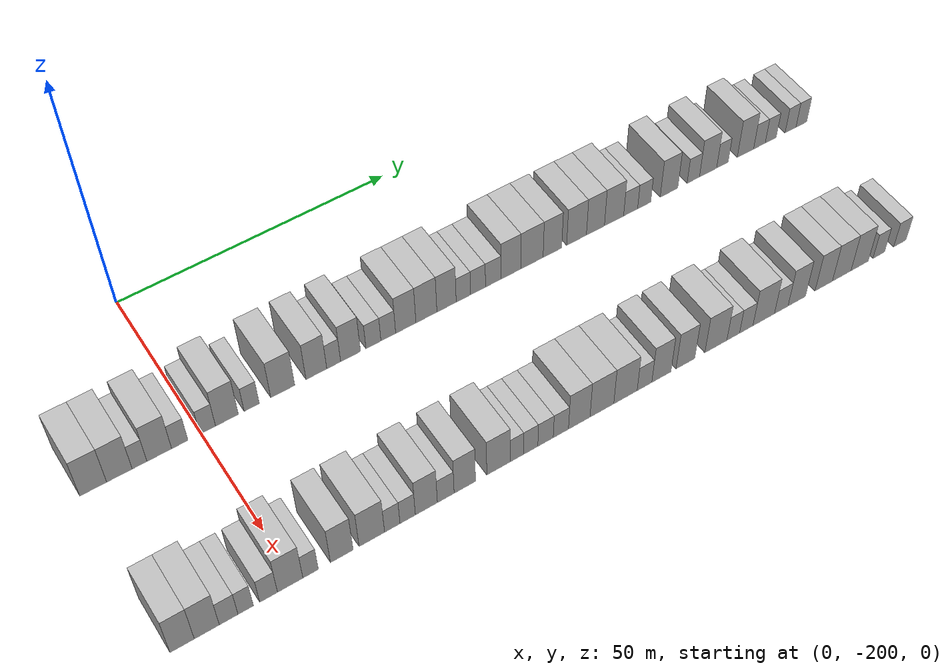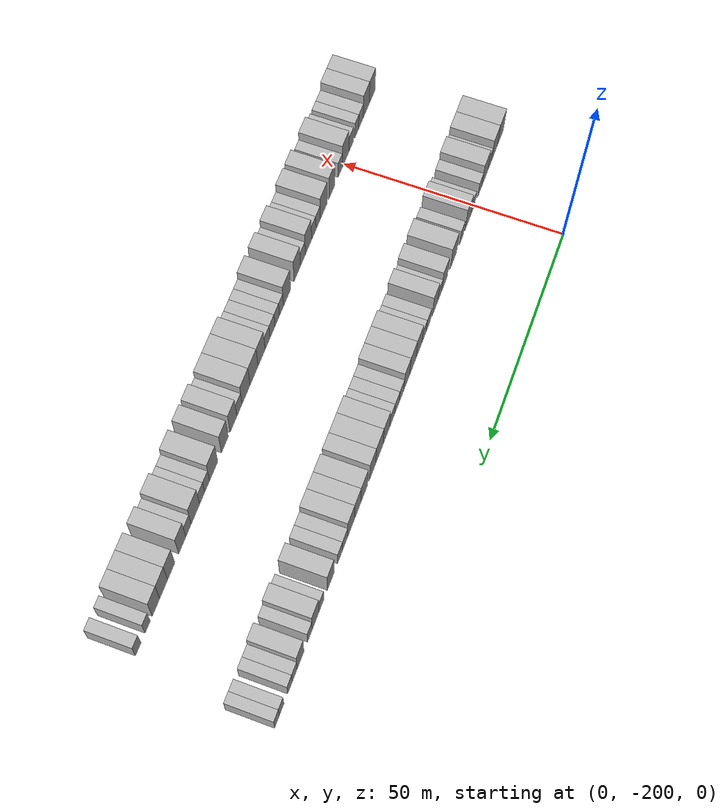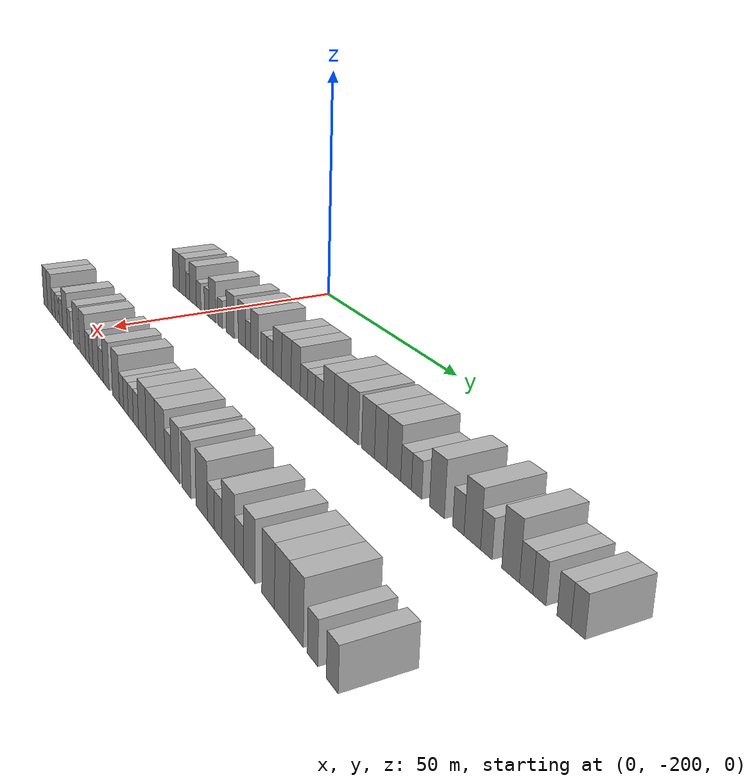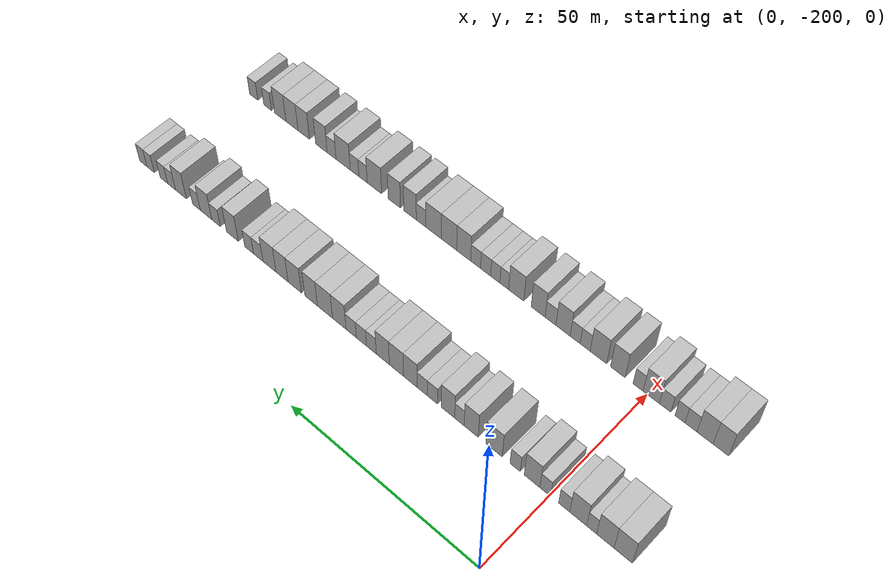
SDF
<sdf version="1.6">
 <world name="default">
  <model name="building_1">
   <static>1</static>
   <pose>25.0000 -217.8196 0 0.000000 0.000000 0.000000</pose>
   <link name="link">
    <pose>0 0 4.50 0 0 0</pose>
    <collision name="collision"><geometry><box><size>10.0000 4.3608 9.0000</size></box></geometry></collision>
    <visual name="visual">
     <cast_shadows>0</cast_shadows>
     <geometry><box><size>10.0000 4.3608 9.0000</size></box></geometry>
     <material>
      <script>
       <uri>model://HANNAS_wall/materials/scripts</uri>
       <uri>model://HANNAS_wall/materials/textures</uri>
       <name>vrc/HANNAS_wall</name>
      </script>
     </material>
    </visual>
   </link>
  </model>
  <model name="building_2">
   <static>1</static>
   <pose>25.0000 -213.5517 0 0.000000 0.000000 0.000000</pose>
   <link name="link">
    <pose>0 0 4.50 0 0 0</pose>
    <collision name="collision"><geometry><box><size>10.0000 4.1750 9.0000</size></box></geometry></collision>
    <visual name="visual">
     <cast_shadows>0</cast_shadows>
     <geometry><box><size>10.0000 4.1750 9.0000</size></box></geometry>
     <material>
      <script>
       <uri>model://HANNAS_wall/materials/scripts</uri>
       <uri>model://HANNAS_wall/materials/textures</uri>
       <name>vrc/HANNAS_wall</name>
      </script>
     </material>
    </visual>
   </link>
  </model>
  <model name="building_3">
   <static>1</static>
   <pose>25.0000 -210.2575 0 0.000000 0.000000 0.000000</pose>
   <link name="link">
    <pose>0 0 3.00 0 0 0</pose>
    <collision name="collision"><geometry><box><size>10.0000 2.4133 6.0000</size></box></geometry></collision>
    <visual name="visual">
     <cast_shadows>0</cast_shadows>
     <geometry><box><size>10.0000 2.4133 6.0000</size></box></geometry>
     <material>
      <script>
       <uri>model://HANNAS_wall/materials/scripts</uri>
       <uri>model://HANNAS_wall/materials/textures</uri>
       <name>vrc/HANNAS_wall</name>
      </script>
     </material>
    </visual>
   </link>
  </model>
  <model name="building_4">
   <static>1</static>
   <pose>25.0000 -206.9874 0 0.000000 0.000000 0.000000</pose>
   <link name="link">
    <pose>0 0 4.50 0 0 0</pose>
    <collision name="collision"><geometry><box><size>10.0000 4.1270 9.0000</size></box></geometry></collision>
    <visual name="visual">
     <cast_shadows>0</cast_shadows>
     <geometry><box><size>10.0000 4.1270 9.0000</size></box></geometry>
     <material>
      <script>
       <uri>model://HANNAS_wall/materials/scripts</uri>
       <uri>model://HANNAS_wall/materials/textures</uri>
       <name>vrc/HANNAS_wall</name>
      </script>
     </material>
    </visual>
   </link>
  </model>
  <model name="building_5">
   <static>1</static>
   <pose>25.0000 -203.5547 0 0.000000 0.000000 0.000000</pose>
   <link name="link">
    <pose>0 0 3.00 0 0 0</pose>
    <collision name="collision"><geometry><box><size>10.0000 2.7383 6.0000</size></box></geometry></collision>
    <visual name="visual">
     <cast_shadows>0</cast_shadows>
     <geometry><box><size>10.0000 2.7383 6.0000</size></box></geometry>
     <material>
      <script>
       <uri>model://HANNAS_wall/materials/scripts</uri>
       <uri>model://HANNAS_wall/materials/textures</uri>
       <name>vrc/HANNAS_wall</name>
      </script>
     </material>
    </visual>
   </link>
  </model>
  <model name="building_6">
   <static>1</static>
   <pose>25.0000 -198.8463 0 0.000000 0.000000 0.000000</pose>
   <link name="link">
    <pose>0 0 3.00 0 0 0</pose>
    <collision name="collision"><geometry><box><size>10.0000 2.6786 6.0000</size></box></geometry></collision>
    <visual name="visual">
     <cast_shadows>0</cast_shadows>
     <geometry><box><size>10.0000 2.6786 6.0000</size></box></geometry>
     <material>
      <script>
       <uri>model://HANNAS_wall/materials/scripts</uri>
       <uri>model://HANNAS_wall/materials/textures</uri>
       <name>vrc/HANNAS_wall</name>
      </script>
     </material>
    </visual>
   </link>
  </model>
  <model name="building_7">
   <static>1</static>
   <pose>25.0000 -195.5430 0 0.000000 0.000000 0.000000</pose>
   <link name="link">
    <pose>0 0 4.50 0 0 0</pose>
    <collision name="collision"><geometry><box><size>10.0000 3.9280 9.0000</size></box></geometry></collision>
    <visual name="visual">
     <cast_shadows>0</cast_shadows>
     <geometry><box><size>10.0000 3.9280 9.0000</size></box></geometry>
     <material>
      <script>
       <uri>model://HANNAS_wall/materials/scripts</uri>
       <uri>model://HANNAS_wall/materials/textures</uri>
       <name>vrc/HANNAS_wall</name>
      </script>
     </material>
    </visual>
   </link>
  </model>
  <model name="building_8">
   <static>1</static>
   <pose>25.0000 -191.2647 0 0.000000 0.000000 0.000000</pose>
   <link name="link">
    <pose>0 0 3.00 0 0 0</pose>
    <collision name="collision"><geometry><box><size>10.0000 2.6285 6.0000</size></box></geometry></collision>
    <visual name="visual">
     <cast_shadows>0</cast_shadows>
     <geometry><box><size>10.0000 2.6285 6.0000</size></box></geometry>
     <material>
      <script>
       <uri>model://HANNAS_wall/materials/scripts</uri>
       <uri>model://HANNAS_wall/materials/textures</uri>
       <name>vrc/HANNAS_wall</name>
      </script>
     </material>
    </visual>
   </link>
  </model>
  <model name="building_9">
   <static>1</static>
   <pose>25.0000 -185.8397 0 0.000000 0.000000 0.000000</pose>
   <link name="link">
    <pose>0 0 4.50 0 0 0</pose>
    <collision name="collision"><geometry><box><size>10.0000 4.2216 9.0000</size></box></geometry></collision>
    <visual name="visual">
     <cast_shadows>0</cast_shadows>
     <geometry><box><size>10.0000 4.2216 9.0000</size></box></geometry>
     <material>
      <script>
       <uri>model://HANNAS_wall/materials/scripts</uri>
       <uri>model://HANNAS_wall/materials/textures</uri>
       <name>vrc/HANNAS_wall</name>
      </script>
     </material>
    </visual>
   </link>
  </model>
  <model name="building_10">
   <static>1</static>
   <pose>25.0000 -179.8683 0 0.000000 0.000000 0.000000</pose>
   <link name="link">
    <pose>0 0 4.50 0 0 0</pose>
    <collision name="collision"><geometry><box><size>10.0000 3.7211 9.0000</size></box></geometry></collision>
    <visual name="visual">
     <cast_shadows>0</cast_shadows>
     <geometry><box><size>10.0000 3.7211 9.0000</size></box></geometry>
     <material>
      <script>
       <uri>model://HANNAS_wall/materials/scripts</uri>
       <uri>model://HANNAS_wall/materials/textures</uri>
       <name>vrc/HANNAS_wall</name>
      </script>
     </material>
    </visual>
   </link>
  </model>
  <model name="building_11">
   <static>1</static>
   <pose>25.0000 -176.7563 0 0.000000 0.000000 0.000000</pose>
   <link name="link">
    <pose>0 0 3.00 0 0 0</pose>
    <collision name="collision"><geometry><box><size>10.0000 2.5028 6.0000</size></box></geometry></collision>
    <visual name="visual">
     <cast_shadows>0</cast_shadows>
     <geometry><box><size>10.0000 2.5028 6.0000</size></box></geometry>
     <material>
      <script>
       <uri>model://HANNAS_wall/materials/scripts</uri>
       <uri>model://HANNAS_wall/materials/textures</uri>
       <name>vrc/HANNAS_wall</name>
      </script>
     </material>
    </visual>
   </link>
  </model>
  <model name="building_12">
   <static>1</static>
   <pose>25.0000 -173.7009 0 0.000000 0.000000 0.000000</pose>
   <link name="link">
    <pose>0 0 4.50 0 0 0</pose>
    <collision name="collision"><geometry><box><size>10.0000 3.6080 9.0000</size></box></geometry></collision>
    <visual name="visual">
     <cast_shadows>0</cast_shadows>
     <geometry><box><size>10.0000 3.6080 9.0000</size></box></geometry>
     <material>
      <script>
       <uri>model://HANNAS_wall/materials/scripts</uri>
       <uri>model://HANNAS_wall/materials/textures</uri>
       <name>vrc/HANNAS_wall</name>
      </script>
     </material>
    </visual>
   </link>
  </model>
  <model name="building_13">
   <static>1</static>
   <pose>25.0000 -169.5221 0 0.000000 0.000000 0.000000</pose>
   <link name="link">
    <pose>0 0 3.00 0 0 0</pose>
    <collision name="collision"><geometry><box><size>10.0000 2.7497 6.0000</size></box></geometry></collision>
    <visual name="visual">
     <cast_shadows>0</cast_shadows>
     <geometry><box><size>10.0000 2.7497 6.0000</size></box></geometry>
     <material>
      <script>
       <uri>model://HANNAS_wall/materials/scripts</uri>
       <uri>model://HANNAS_wall/materials/textures</uri>
       <name>vrc/HANNAS_wall</name>
      </script>
     </material>
    </visual>
   </link>
  </model>
  <model name="building_14">
   <static>1</static>
   <pose>25.0000 -166.7844 0 0.000000 0.000000 0.000000</pose>
   <link name="link">
    <pose>0 0 3.00 0 0 0</pose>
    <collision name="collision"><geometry><box><size>10.0000 2.7257 6.0000</size></box></geometry></collision>
    <visual name="visual">
     <cast_shadows>0</cast_shadows>
     <geometry><box><size>10.0000 2.7257 6.0000</size></box></geometry>
     <material>
      <script>
       <uri>model://HANNAS_wall/materials/scripts</uri>
       <uri>model://HANNAS_wall/materials/textures</uri>
       <name>vrc/HANNAS_wall</name>
      </script>
     </material>
    </visual>
   </link>
  </model>
  <model name="building_15">
   <static>1</static>
   <pose>25.0000 -163.5337 0 0.000000 0.000000 0.000000</pose>
   <link name="link">
    <pose>0 0 4.50 0 0 0</pose>
    <collision name="collision"><geometry><box><size>10.0000 3.7757 9.0000</size></box></geometry></collision>
    <visual name="visual">
     <cast_shadows>0</cast_shadows>
     <geometry><box><size>10.0000 3.7757 9.0000</size></box></geometry>
     <material>
      <script>
       <uri>model://HANNAS_wall/materials/scripts</uri>
       <uri>model://HANNAS_wall/materials/textures</uri>
       <name>vrc/HANNAS_wall</name>
      </script>
     </material>
    </visual>
   </link>
  </model>
  <model name="building_16">
   <static>1</static>
   <pose>25.0000 -159.6657 0 0.000000 0.000000 0.000000</pose>
   <link name="link">
    <pose>0 0 4.50 0 0 0</pose>
    <collision name="collision"><geometry><box><size>10.0000 3.9602 9.0000</size></box></geometry></collision>
    <visual name="visual">
     <cast_shadows>0</cast_shadows>
     <geometry><box><size>10.0000 3.9602 9.0000</size></box></geometry>
     <material>
      <script>
       <uri>model://HANNAS_wall/materials/scripts</uri>
       <uri>model://HANNAS_wall/materials/textures</uri>
       <name>vrc/HANNAS_wall</name>
      </script>
     </material>
    </visual>
   </link>
  </model>
  <model name="building_17">
   <static>1</static>
   <pose>25.0000 -155.8524 0 0.000000 0.000000 0.000000</pose>
   <link name="link">
    <pose>0 0 4.50 0 0 0</pose>
    <collision name="collision"><geometry><box><size>10.0000 3.6663 9.0000</size></box></geometry></collision>
    <visual name="visual">
     <cast_shadows>0</cast_shadows>
     <geometry><box><size>10.0000 3.6663 9.0000</size></box></geometry>
     <material>
      <script>
       <uri>model://HANNAS_wall/materials/scripts</uri>
       <uri>model://HANNAS_wall/materials/textures</uri>
       <name>vrc/HANNAS_wall</name>
      </script>
     </material>
    </visual>
   </link>
  </model>
  <model name="building_18">
   <static>1</static>
   <pose>25.0000 -152.6347 0 0.000000 0.000000 0.000000</pose>
   <link name="link">
    <pose>0 0 3.00 0 0 0</pose>
    <collision name="collision"><geometry><box><size>10.0000 2.7692 6.0000</size></box></geometry></collision>
    <visual name="visual">
     <cast_shadows>0</cast_shadows>
     <geometry><box><size>10.0000 2.7692 6.0000</size></box></geometry>
     <material>
      <script>
       <uri>model://HANNAS_wall/materials/scripts</uri>
       <uri>model://HANNAS_wall/materials/textures</uri>
       <name>vrc/HANNAS_wall</name>
      </script>
     </material>
    </visual>
   </link>
  </model>
  <model name="building_19">
   <static>1</static>
   <pose>25.0000 -149.8208 0 0.000000 0.000000 0.000000</pose>
   <link name="link">
    <pose>0 0 3.00 0 0 0</pose>
    <collision name="collision"><geometry><box><size>10.0000 2.8584 6.0000</size></box></geometry></collision>
    <visual name="visual">
     <cast_shadows>0</cast_shadows>
     <geometry><box><size>10.0000 2.8584 6.0000</size></box></geometry>
     <material>
      <script>
       <uri>model://HANNAS_wall/materials/scripts</uri>
       <uri>model://HANNAS_wall/materials/textures</uri>
       <name>vrc/HANNAS_wall</name>
      </script>
     </material>
    </visual>
   </link>
  </model>
  <model name="building_20">
   <static>1</static>
   <pose>25.0000 -146.8978 0 0.000000 0.000000 0.000000</pose>
   <link name="link">
    <pose>0 0 3.00 0 0 0</pose>
    <collision name="collision"><geometry><box><size>10.0000 2.9875 6.0000</size></box></geometry></collision>
    <visual name="visual">
     <cast_shadows>0</cast_shadows>
     <geometry><box><size>10.0000 2.9875 6.0000</size></box></geometry>
     <material>
      <script>
       <uri>model://HANNAS_wall/materials/scripts</uri>
       <uri>model://HANNAS_wall/materials/textures</uri>
       <name>vrc/HANNAS_wall</name>
      </script>
     </material>
    </visual>
   </link>
  </model>
  <model name="building_21">
   <static>1</static>
   <pose>25.0000 -143.4549 0 0.000000 0.000000 0.000000</pose>
   <link name="link">
    <pose>0 0 4.50 0 0 0</pose>
    <collision name="collision"><geometry><box><size>10.0000 3.8983 9.0000</size></box></geometry></collision>
    <visual name="visual">
     <cast_shadows>0</cast_shadows>
     <geometry><box><size>10.0000 3.8983 9.0000</size></box></geometry>
     <material>
      <script>
       <uri>model://HANNAS_wall/materials/scripts</uri>
       <uri>model://HANNAS_wall/materials/textures</uri>
       <name>vrc/HANNAS_wall</name>
      </script>
     </material>
    </visual>
   </link>
  </model>
  <model name="building_22">
   <static>1</static>
   <pose>25.0000 -139.2806 0 0.000000 0.000000 0.000000</pose>
   <link name="link">
    <pose>0 0 4.50 0 0 0</pose>
    <collision name="collision"><geometry><box><size>10.0000 4.4503 9.0000</size></box></geometry></collision>
    <visual name="visual">
     <cast_shadows>0</cast_shadows>
     <geometry><box><size>10.0000 4.4503 9.0000</size></box></geometry>
     <material>
      <script>
       <uri>model://HANNAS_wall/materials/scripts</uri>
       <uri>model://HANNAS_wall/materials/textures</uri>
       <name>vrc/HANNAS_wall</name>
      </script>
     </material>
    </visual>
   </link>
  </model>
  <model name="building_23">
   <static>1</static>
   <pose>25.0000 -135.1921 0 0.000000 0.000000 0.000000</pose>
   <link name="link">
    <pose>0 0 4.50 0 0 0</pose>
    <collision name="collision"><geometry><box><size>10.0000 3.7267 9.0000</size></box></geometry></collision>
    <visual name="visual">
     <cast_shadows>0</cast_shadows>
     <geometry><box><size>10.0000 3.7267 9.0000</size></box></geometry>
     <material>
      <script>
       <uri>model://HANNAS_wall/materials/scripts</uri>
       <uri>model://HANNAS_wall/materials/textures</uri>
       <name>vrc/HANNAS_wall</name>
      </script>
     </material>
    </visual>
   </link>
  </model>
  <model name="building_24">
   <static>1</static>
   <pose>25.0000 -130.3292 0 0.000000 0.000000 0.000000</pose>
   <link name="link">
    <pose>0 0 4.50 0 0 0</pose>
    <collision name="collision"><geometry><box><size>10.0000 3.9993 9.0000</size></box></geometry></collision>
    <visual name="visual">
     <cast_shadows>0</cast_shadows>
     <geometry><box><size>10.0000 3.9993 9.0000</size></box></geometry>
     <material>
      <script>
       <uri>model://HANNAS_wall/materials/scripts</uri>
       <uri>model://HANNAS_wall/materials/textures</uri>
       <name>vrc/HANNAS_wall</name>
      </script>
     </material>
    </visual>
   </link>
  </model>
  <model name="building_25">
   <static>1</static>
   <pose>25.0000 -126.4850 0 0.000000 0.000000 0.000000</pose>
   <link name="link">
    <pose>0 0 4.50 0 0 0</pose>
    <collision name="collision"><geometry><box><size>10.0000 3.6889 9.0000</size></box></geometry></collision>
    <visual name="visual">
     <cast_shadows>0</cast_shadows>
     <geometry><box><size>10.0000 3.6889 9.0000</size></box></geometry>
     <material>
      <script>
       <uri>model://HANNAS_wall/materials/scripts</uri>
       <uri>model://HANNAS_wall/materials/textures</uri>
       <name>vrc/HANNAS_wall</name>
      </script>
     </material>
    </visual>
   </link>
  </model>
  <model name="building_26">
   <static>1</static>
   <pose>25.0000 -122.6593 0 0.000000 0.000000 0.000000</pose>
   <link name="link">
    <pose>0 0 4.50 0 0 0</pose>
    <collision name="collision"><geometry><box><size>10.0000 3.9626 9.0000</size></box></geometry></collision>
    <visual name="visual">
     <cast_shadows>0</cast_shadows>
     <geometry><box><size>10.0000 3.9626 9.0000</size></box></geometry>
     <material>
      <script>
       <uri>model://HANNAS_wall/materials/scripts</uri>
       <uri>model://HANNAS_wall/materials/textures</uri>
       <name>vrc/HANNAS_wall</name>
      </script>
     </material>
    </visual>
   </link>
  </model>
  <model name="building_27">
   <static>1</static>
   <pose>25.0000 -119.2190 0 0.000000 0.000000 0.000000</pose>
   <link name="link">
    <pose>0 0 3.00 0 0 0</pose>
    <collision name="collision"><geometry><box><size>10.0000 2.9181 6.0000</size></box></geometry></collision>
    <visual name="visual">
     <cast_shadows>0</cast_shadows>
     <geometry><box><size>10.0000 2.9181 6.0000</size></box></geometry>
     <material>
      <script>
       <uri>model://HANNAS_wall/materials/scripts</uri>
       <uri>model://HANNAS_wall/materials/textures</uri>
       <name>vrc/HANNAS_wall</name>
      </script>
     </material>
    </visual>
   </link>
  </model>
  <model name="building_28">
   <static>1</static>
   <pose>25.0000 -116.3828 0 0.000000 0.000000 0.000000</pose>
   <link name="link">
    <pose>0 0 3.00 0 0 0</pose>
    <collision name="collision"><geometry><box><size>10.0000 2.7541 6.0000</size></box></geometry></collision>
    <visual name="visual">
     <cast_shadows>0</cast_shadows>
     <geometry><box><size>10.0000 2.7541 6.0000</size></box></geometry>
     <material>
      <script>
       <uri>model://HANNAS_wall/materials/scripts</uri>
       <uri>model://HANNAS_wall/materials/textures</uri>
       <name>vrc/HANNAS_wall</name>
      </script>
     </material>
    </visual>
   </link>
  </model>
  <model name="building_29">
   <static>1</static>
   <pose>25.0000 -111.1421 0 0.000000 0.000000 0.000000</pose>
   <link name="link">
    <pose>0 0 4.50 0 0 0</pose>
    <collision name="collision"><geometry><box><size>10.0000 3.7273 9.0000</size></box></geometry></collision>
    <visual name="visual">
     <cast_shadows>0</cast_shadows>
     <geometry><box><size>10.0000 3.7273 9.0000</size></box></geometry>
     <material>
      <script>
       <uri>model://HANNAS_wall/materials/scripts</uri>
       <uri>model://HANNAS_wall/materials/textures</uri>
       <name>vrc/HANNAS_wall</name>
      </script>
     </material>
    </visual>
   </link>
  </model>
  <model name="building_30">
   <static>1</static>
   <pose>25.0000 -105.9499 0 0.000000 0.000000 0.000000</pose>
   <link name="link">
    <pose>0 0 3.00 0 0 0</pose>
    <collision name="collision"><geometry><box><size>10.0000 2.6573 6.0000</size></box></geometry></collision>
    <visual name="visual">
     <cast_shadows>0</cast_shadows>
     <geometry><box><size>10.0000 2.6573 6.0000</size></box></geometry>
     <material>
      <script>
       <uri>model://HANNAS_wall/materials/scripts</uri>
       <uri>model://HANNAS_wall/materials/textures</uri>
       <name>vrc/HANNAS_wall</name>
      </script>
     </material>
    </visual>
   </link>
  </model>
  <model name="building_31">
   <static>1</static>
   <pose>25.0000 -102.7578 0 0.000000 0.000000 0.000000</pose>
   <link name="link">
    <pose>0 0 4.50 0 0 0</pose>
    <collision name="collision"><geometry><box><size>10.0000 3.7269 9.0000</size></box></geometry></collision>
    <visual name="visual">
     <cast_shadows>0</cast_shadows>
     <geometry><box><size>10.0000 3.7269 9.0000</size></box></geometry>
     <material>
      <script>
       <uri>model://HANNAS_wall/materials/scripts</uri>
       <uri>model://HANNAS_wall/materials/textures</uri>
       <name>vrc/HANNAS_wall</name>
      </script>
     </material>
    </visual>
   </link>
  </model>
  <model name="building_32">
   <static>1</static>
   <pose>25.0000 -99.6385 0 0.000000 0.000000 0.000000</pose>
   <link name="link">
    <pose>0 0 3.00 0 0 0</pose>
    <collision name="collision"><geometry><box><size>10.0000 2.5117 6.0000</size></box></geometry></collision>
    <visual name="visual">
     <cast_shadows>0</cast_shadows>
     <geometry><box><size>10.0000 2.5117 6.0000</size></box></geometry>
     <material>
      <script>
       <uri>model://HANNAS_wall/materials/scripts</uri>
       <uri>model://HANNAS_wall/materials/textures</uri>
       <name>vrc/HANNAS_wall</name>
      </script>
     </material>
    </visual>
   </link>
  </model>
  <model name="building_33">
   <static>1</static>
   <pose>25.0000 -94.5818 0 0.000000 0.000000 0.000000</pose>
   <link name="link">
    <pose>0 0 4.50 0 0 0</pose>
    <collision name="collision"><geometry><box><size>10.0000 3.6016 9.0000</size></box></geometry></collision>
    <visual name="visual">
     <cast_shadows>0</cast_shadows>
     <geometry><box><size>10.0000 3.6016 9.0000</size></box></geometry>
     <material>
      <script>
       <uri>model://HANNAS_wall/materials/scripts</uri>
       <uri>model://HANNAS_wall/materials/textures</uri>
       <name>vrc/HANNAS_wall</name>
      </script>
     </material>
    </visual>
   </link>
  </model>
  <model name="building_34">
   <static>1</static>
   <pose>25.0000 -91.4817 0 0.000000 0.000000 0.000000</pose>
   <link name="link">
    <pose>0 0 3.00 0 0 0</pose>
    <collision name="collision"><geometry><box><size>10.0000 2.5986 6.0000</size></box></geometry></collision>
    <visual name="visual">
     <cast_shadows>0</cast_shadows>
     <geometry><box><size>10.0000 2.5986 6.0000</size></box></geometry>
     <material>
      <script>
       <uri>model://HANNAS_wall/materials/scripts</uri>
       <uri>model://HANNAS_wall/materials/textures</uri>
       <name>vrc/HANNAS_wall</name>
      </script>
     </material>
    </visual>
   </link>
  </model>
  <model name="building_35">
   <static>1</static>
   <pose>25.0000 -88.9547 0 0.000000 0.000000 0.000000</pose>
   <link name="link">
    <pose>0 0 3.00 0 0 0</pose>
    <collision name="collision"><geometry><box><size>10.0000 2.4553 6.0000</size></box></geometry></collision>
    <visual name="visual">
     <cast_shadows>0</cast_shadows>
     <geometry><box><size>10.0000 2.4553 6.0000</size></box></geometry>
     <material>
      <script>
       <uri>model://HANNAS_wall/materials/scripts</uri>
       <uri>model://HANNAS_wall/materials/textures</uri>
       <name>vrc/HANNAS_wall</name>
      </script>
     </material>
    </visual>
   </link>
  </model>
  <model name="building_36">
   <static>1</static>
   <pose>25.0000 -84.4982 0 0.000000 0.000000 0.000000</pose>
   <link name="link">
    <pose>0 0 3.00 0 0 0</pose>
    <collision name="collision"><geometry><box><size>10.0000 2.4577 6.0000</size></box></geometry></collision>
    <visual name="visual">
     <cast_shadows>0</cast_shadows>
     <geometry><box><size>10.0000 2.4577 6.0000</size></box></geometry>
     <material>
      <script>
       <uri>model://HANNAS_wall/materials/scripts</uri>
       <uri>model://HANNAS_wall/materials/textures</uri>
       <name>vrc/HANNAS_wall</name>
      </script>
     </material>
    </visual>
   </link>
  </model>
  <model name="building_37">
   <static>1</static>
   <pose>25.0000 -82.0529 0 0.000000 0.000000 0.000000</pose>
   <link name="link">
    <pose>0 0 3.00 0 0 0</pose>
    <collision name="collision"><geometry><box><size>10.0000 2.4330 6.0000</size></box></geometry></collision>
    <visual name="visual">
     <cast_shadows>0</cast_shadows>
     <geometry><box><size>10.0000 2.4330 6.0000</size></box></geometry>
     <material>
      <script>
       <uri>model://HANNAS_wall/materials/scripts</uri>
       <uri>model://HANNAS_wall/materials/textures</uri>
       <name>vrc/HANNAS_wall</name>
      </script>
     </material>
    </visual>
   </link>
  </model>
  <model name="building_114">
   <static>1</static>
   <pose>55.0000 -218.1189 0 0.000000 0.000000 0.000000</pose>
   <link name="link">
    <pose>0 0 4.50 0 0 0</pose>
    <collision name="collision"><geometry><box><size>10.0000 3.7623 9.0000</size></box></geometry></collision>
    <visual name="visual">
     <cast_shadows>0</cast_shadows>
     <geometry><box><size>10.0000 3.7623 9.0000</size></box></geometry>
     <material>
      <script>
       <uri>model://HANNAS_wall/materials/scripts</uri>
       <uri>model://HANNAS_wall/materials/textures</uri>
       <name>vrc/HANNAS_wall</name>
      </script>
     </material>
    </visual>
   </link>
  </model>
  <model name="building_115">
   <static>1</static>
   <pose>55.0000 -214.2817 0 0.000000 0.000000 0.000000</pose>
   <link name="link">
    <pose>0 0 4.50 0 0 0</pose>
    <collision name="collision"><geometry><box><size>10.0000 3.9121 9.0000</size></box></geometry></collision>
    <visual name="visual">
     <cast_shadows>0</cast_shadows>
     <geometry><box><size>10.0000 3.9121 9.0000</size></box></geometry>
     <material>
      <script>
       <uri>model://HANNAS_wall/materials/scripts</uri>
       <uri>model://HANNAS_wall/materials/textures</uri>
       <name>vrc/HANNAS_wall</name>
      </script>
     </material>
    </visual>
   </link>
  </model>
  <model name="building_116">
   <static>1</static>
   <pose>55.0000 -210.8537 0 0.000000 0.000000 0.000000</pose>
   <link name="link">
    <pose>0 0 3.00 0 0 0</pose>
    <collision name="collision"><geometry><box><size>10.0000 2.9439 6.0000</size></box></geometry></collision>
    <visual name="visual">
     <cast_shadows>0</cast_shadows>
     <geometry><box><size>10.0000 2.9439 6.0000</size></box></geometry>
     <material>
      <script>
       <uri>model://HANNAS_wall/materials/scripts</uri>
       <uri>model://HANNAS_wall/materials/textures</uri>
       <name>vrc/HANNAS_wall</name>
      </script>
     </material>
    </visual>
   </link>
  </model>
  <model name="building_117">
   <static>1</static>
   <pose>55.0000 -208.1535 0 0.000000 0.000000 0.000000</pose>
   <link name="link">
    <pose>0 0 3.00 0 0 0</pose>
    <collision name="collision"><geometry><box><size>10.0000 2.4567 6.0000</size></box></geometry></collision>
    <visual name="visual">
     <cast_shadows>0</cast_shadows>
     <geometry><box><size>10.0000 2.4567 6.0000</size></box></geometry>
     <material>
      <script>
       <uri>model://HANNAS_wall/materials/scripts</uri>
       <uri>model://HANNAS_wall/materials/textures</uri>
       <name>vrc/HANNAS_wall</name>
      </script>
     </material>
    </visual>
   </link>
  </model>
  <model name="building_118">
   <static>1</static>
   <pose>55.0000 -204.4945 0 0.000000 0.000000 0.000000</pose>
   <link name="link">
    <pose>0 0 3.00 0 0 0</pose>
    <collision name="collision"><geometry><box><size>10.0000 2.8613 6.0000</size></box></geometry></collision>
    <visual name="visual">
     <cast_shadows>0</cast_shadows>
     <geometry><box><size>10.0000 2.8613 6.0000</size></box></geometry>
     <material>
      <script>
       <uri>model://HANNAS_wall/materials/scripts</uri>
       <uri>model://HANNAS_wall/materials/textures</uri>
       <name>vrc/HANNAS_wall</name>
      </script>
     </material>
    </visual>
   </link>
  </model>
  <model name="building_119">
   <static>1</static>
   <pose>55.0000 -200.9998 0 0.000000 0.000000 0.000000</pose>
   <link name="link">
    <pose>0 0 4.50 0 0 0</pose>
    <collision name="collision"><geometry><box><size>10.0000 4.1281 9.0000</size></box></geometry></collision>
    <visual name="visual">
     <cast_shadows>0</cast_shadows>
     <geometry><box><size>10.0000 4.1281 9.0000</size></box></geometry>
     <material>
      <script>
       <uri>model://HANNAS_wall/materials/scripts</uri>
       <uri>model://HANNAS_wall/materials/textures</uri>
       <name>vrc/HANNAS_wall</name>
      </script>
     </material>
    </visual>
   </link>
  </model>
  <model name="building_120">
   <static>1</static>
   <pose>55.0000 -197.6704 0 0.000000 0.000000 0.000000</pose>
   <link name="link">
    <pose>0 0 3.00 0 0 0</pose>
    <collision name="collision"><geometry><box><size>10.0000 2.5308 6.0000</size></box></geometry></collision>
    <visual name="visual">
     <cast_shadows>0</cast_shadows>
     <geometry><box><size>10.0000 2.5308 6.0000</size></box></geometry>
     <material>
      <script>
       <uri>model://HANNAS_wall/materials/scripts</uri>
       <uri>model://HANNAS_wall/materials/textures</uri>
       <name>vrc/HANNAS_wall</name>
      </script>
     </material>
    </visual>
   </link>
  </model>
  <model name="building_121">
   <static>1</static>
   <pose>55.0000 -192.5222 0 0.000000 0.000000 0.000000</pose>
   <link name="link">
    <pose>0 0 4.50 0 0 0</pose>
    <collision name="collision"><geometry><box><size>10.0000 3.7657 9.0000</size></box></geometry></collision>
    <visual name="visual">
     <cast_shadows>0</cast_shadows>
     <geometry><box><size>10.0000 3.7657 9.0000</size></box></geometry>
     <material>
      <script>
       <uri>model://HANNAS_wall/materials/scripts</uri>
       <uri>model://HANNAS_wall/materials/textures</uri>
       <name>vrc/HANNAS_wall</name>
      </script>
     </material>
    </visual>
   </link>
  </model>
  <model name="building_122">
   <static>1</static>
   <pose>55.0000 -187.4908 0 0.000000 0.000000 0.000000</pose>
   <link name="link">
    <pose>0 0 4.50 0 0 0</pose>
    <collision name="collision"><geometry><box><size>10.0000 4.2971 9.0000</size></box></geometry></collision>
    <visual name="visual">
     <cast_shadows>0</cast_shadows>
     <geometry><box><size>10.0000 4.2971 9.0000</size></box></geometry>
     <material>
      <script>
       <uri>model://HANNAS_wall/materials/scripts</uri>
       <uri>model://HANNAS_wall/materials/textures</uri>
       <name>vrc/HANNAS_wall</name>
      </script>
     </material>
    </visual>
   </link>
  </model>
  <model name="building_123">
   <static>1</static>
   <pose>55.0000 -184.0334 0 0.000000 0.000000 0.000000</pose>
   <link name="link">
    <pose>0 0 3.00 0 0 0</pose>
    <collision name="collision"><geometry><box><size>10.0000 2.6176 6.0000</size></box></geometry></collision>
    <visual name="visual">
     <cast_shadows>0</cast_shadows>
     <geometry><box><size>10.0000 2.6176 6.0000</size></box></geometry>
     <material>
      <script>
       <uri>model://HANNAS_wall/materials/scripts</uri>
       <uri>model://HANNAS_wall/materials/textures</uri>
       <name>vrc/HANNAS_wall</name>
      </script>
     </material>
    </visual>
   </link>
  </model>
  <model name="building_124">
   <static>1</static>
   <pose>55.0000 -181.4055 0 0.000000 0.000000 0.000000</pose>
   <link name="link">
    <pose>0 0 3.00 0 0 0</pose>
    <collision name="collision"><geometry><box><size>10.0000 2.6382 6.0000</size></box></geometry></collision>
    <visual name="visual">
     <cast_shadows>0</cast_shadows>
     <geometry><box><size>10.0000 2.6382 6.0000</size></box></geometry>
     <material>
      <script>
       <uri>model://HANNAS_wall/materials/scripts</uri>
       <uri>model://HANNAS_wall/materials/textures</uri>
       <name>vrc/HANNAS_wall</name>
      </script>
     </material>
    </visual>
   </link>
  </model>
  <model name="building_125">
   <static>1</static>
   <pose>55.0000 -178.1813 0 0.000000 0.000000 0.000000</pose>
   <link name="link">
    <pose>0 0 4.50 0 0 0</pose>
    <collision name="collision"><geometry><box><size>10.0000 3.8101 9.0000</size></box></geometry></collision>
    <visual name="visual">
     <cast_shadows>0</cast_shadows>
     <geometry><box><size>10.0000 3.8101 9.0000</size></box></geometry>
     <material>
      <script>
       <uri>model://HANNAS_wall/materials/scripts</uri>
       <uri>model://HANNAS_wall/materials/textures</uri>
       <name>vrc/HANNAS_wall</name>
      </script>
     </material>
    </visual>
   </link>
  </model>
  <model name="building_126">
   <static>1</static>
   <pose>55.0000 -174.8141 0 0.000000 0.000000 0.000000</pose>
   <link name="link">
    <pose>0 0 3.00 0 0 0</pose>
    <collision name="collision"><geometry><box><size>10.0000 2.9242 6.0000</size></box></geometry></collision>
    <visual name="visual">
     <cast_shadows>0</cast_shadows>
     <geometry><box><size>10.0000 2.9242 6.0000</size></box></geometry>
     <material>
      <script>
       <uri>model://HANNAS_wall/materials/scripts</uri>
       <uri>model://HANNAS_wall/materials/textures</uri>
       <name>vrc/HANNAS_wall</name>
      </script>
     </material>
    </visual>
   </link>
  </model>
  <model name="building_127">
   <static>1</static>
   <pose>55.0000 -171.4677 0 0.000000 0.000000 0.000000</pose>
   <link name="link">
    <pose>0 0 4.50 0 0 0</pose>
    <collision name="collision"><geometry><box><size>10.0000 3.7686 9.0000</size></box></geometry></collision>
    <visual name="visual">
     <cast_shadows>0</cast_shadows>
     <geometry><box><size>10.0000 3.7686 9.0000</size></box></geometry>
     <material>
      <script>
       <uri>model://HANNAS_wall/materials/scripts</uri>
       <uri>model://HANNAS_wall/materials/textures</uri>
       <name>vrc/HANNAS_wall</name>
      </script>
     </material>
    </visual>
   </link>
  </model>
  <model name="building_128">
   <static>1</static>
   <pose>55.0000 -165.4883 0 0.000000 0.000000 0.000000</pose>
   <link name="link">
    <pose>0 0 4.50 0 0 0</pose>
    <collision name="collision"><geometry><box><size>10.0000 4.1902 9.0000</size></box></geometry></collision>
    <visual name="visual">
     <cast_shadows>0</cast_shadows>
     <geometry><box><size>10.0000 4.1902 9.0000</size></box></geometry>
     <material>
      <script>
       <uri>model://HANNAS_wall/materials/scripts</uri>
       <uri>model://HANNAS_wall/materials/textures</uri>
       <name>vrc/HANNAS_wall</name>
      </script>
     </material>
    </visual>
   </link>
  </model>
  <model name="building_129">
   <static>1</static>
   <pose>55.0000 -162.1886 0 0.000000 0.000000 0.000000</pose>
   <link name="link">
    <pose>0 0 3.00 0 0 0</pose>
    <collision name="collision"><geometry><box><size>10.0000 2.4093 6.0000</size></box></geometry></collision>
    <visual name="visual">
     <cast_shadows>0</cast_shadows>
     <geometry><box><size>10.0000 2.4093 6.0000</size></box></geometry>
     <material>
      <script>
       <uri>model://HANNAS_wall/materials/scripts</uri>
       <uri>model://HANNAS_wall/materials/textures</uri>
       <name>vrc/HANNAS_wall</name>
      </script>
     </material>
    </visual>
   </link>
  </model>
  <model name="building_130">
   <static>1</static>
   <pose>55.0000 -159.6796 0 0.000000 0.000000 0.000000</pose>
   <link name="link">
    <pose>0 0 3.00 0 0 0</pose>
    <collision name="collision"><geometry><box><size>10.0000 2.6088 6.0000</size></box></geometry></collision>
    <visual name="visual">
     <cast_shadows>0</cast_shadows>
     <geometry><box><size>10.0000 2.6088 6.0000</size></box></geometry>
     <material>
      <script>
       <uri>model://HANNAS_wall/materials/scripts</uri>
       <uri>model://HANNAS_wall/materials/textures</uri>
       <name>vrc/HANNAS_wall</name>
      </script>
     </material>
    </visual>
   </link>
  </model>
  <model name="building_131">
   <static>1</static>
   <pose>55.0000 -156.9634 0 0.000000 0.000000 0.000000</pose>
   <link name="link">
    <pose>0 0 3.00 0 0 0</pose>
    <collision name="collision"><geometry><box><size>10.0000 2.8235 6.0000</size></box></geometry></collision>
    <visual name="visual">
     <cast_shadows>0</cast_shadows>
     <geometry><box><size>10.0000 2.8235 6.0000</size></box></geometry>
     <material>
      <script>
       <uri>model://HANNAS_wall/materials/scripts</uri>
       <uri>model://HANNAS_wall/materials/textures</uri>
       <name>vrc/HANNAS_wall</name>
      </script>
     </material>
    </visual>
   </link>
  </model>
  <model name="building_132">
   <static>1</static>
   <pose>55.0000 -154.1457 0 0.000000 0.000000 0.000000</pose>
   <link name="link">
    <pose>0 0 3.00 0 0 0</pose>
    <collision name="collision"><geometry><box><size>10.0000 2.8119 6.0000</size></box></geometry></collision>
    <visual name="visual">
     <cast_shadows>0</cast_shadows>
     <geometry><box><size>10.0000 2.8119 6.0000</size></box></geometry>
     <material>
      <script>
       <uri>model://HANNAS_wall/materials/scripts</uri>
       <uri>model://HANNAS_wall/materials/textures</uri>
       <name>vrc/HANNAS_wall</name>
      </script>
     </material>
    </visual>
   </link>
  </model>
  <model name="building_133">
   <static>1</static>
   <pose>55.0000 -150.7328 0 0.000000 0.000000 0.000000</pose>
   <link name="link">
    <pose>0 0 4.50 0 0 0</pose>
    <collision name="collision"><geometry><box><size>10.0000 4.0139 9.0000</size></box></geometry></collision>
    <visual name="visual">
     <cast_shadows>0</cast_shadows>
     <geometry><box><size>10.0000 4.0139 9.0000</size></box></geometry>
     <material>
      <script>
       <uri>model://HANNAS_wall/materials/scripts</uri>
       <uri>model://HANNAS_wall/materials/textures</uri>
       <name>vrc/HANNAS_wall</name>
      </script>
     </material>
    </visual>
   </link>
  </model>
  <model name="building_134">
   <static>1</static>
   <pose>55.0000 -146.4838 0 0.000000 0.000000 0.000000</pose>
   <link name="link">
    <pose>0 0 4.50 0 0 0</pose>
    <collision name="collision"><geometry><box><size>10.0000 4.4842 9.0000</size></box></geometry></collision>
    <visual name="visual">
     <cast_shadows>0</cast_shadows>
     <geometry><box><size>10.0000 4.4842 9.0000</size></box></geometry>
     <material>
      <script>
       <uri>model://HANNAS_wall/materials/scripts</uri>
       <uri>model://HANNAS_wall/materials/textures</uri>
       <name>vrc/HANNAS_wall</name>
      </script>
     </material>
    </visual>
   </link>
  </model>
  <model name="building_135">
   <static>1</static>
   <pose>55.0000 -142.0125 0 0.000000 0.000000 0.000000</pose>
   <link name="link">
    <pose>0 0 4.50 0 0 0</pose>
    <collision name="collision"><geometry><box><size>10.0000 4.4585 9.0000</size></box></geometry></collision>
    <visual name="visual">
     <cast_shadows>0</cast_shadows>
     <geometry><box><size>10.0000 4.4585 9.0000</size></box></geometry>
     <material>
      <script>
       <uri>model://HANNAS_wall/materials/scripts</uri>
       <uri>model://HANNAS_wall/materials/textures</uri>
       <name>vrc/HANNAS_wall</name>
      </script>
     </material>
    </visual>
   </link>
  </model>
  <model name="building_136">
   <static>1</static>
   <pose>55.0000 -138.3709 0 0.000000 0.000000 0.000000</pose>
   <link name="link">
    <pose>0 0 3.00 0 0 0</pose>
    <collision name="collision"><geometry><box><size>10.0000 2.8247 6.0000</size></box></geometry></collision>
    <visual name="visual">
     <cast_shadows>0</cast_shadows>
     <geometry><box><size>10.0000 2.8247 6.0000</size></box></geometry>
     <material>
      <script>
       <uri>model://HANNAS_wall/materials/scripts</uri>
       <uri>model://HANNAS_wall/materials/textures</uri>
       <name>vrc/HANNAS_wall</name>
      </script>
     </material>
    </visual>
   </link>
  </model>
  <model name="building_137">
   <static>1</static>
   <pose>55.0000 -135.1018 0 0.000000 0.000000 0.000000</pose>
   <link name="link">
    <pose>0 0 4.50 0 0 0</pose>
    <collision name="collision"><geometry><box><size>10.0000 3.7133 9.0000</size></box></geometry></collision>
    <visual name="visual">
     <cast_shadows>0</cast_shadows>
     <geometry><box><size>10.0000 3.7133 9.0000</size></box></geometry>
     <material>
      <script>
       <uri>model://HANNAS_wall/materials/scripts</uri>
       <uri>model://HANNAS_wall/materials/textures</uri>
       <name>vrc/HANNAS_wall</name>
      </script>
     </material>
    </visual>
   </link>
  </model>
  <model name="building_138">
   <static>1</static>
   <pose>55.0000 -130.3985 0 0.000000 0.000000 0.000000</pose>
   <link name="link">
    <pose>0 0 4.50 0 0 0</pose>
    <collision name="collision"><geometry><box><size>10.0000 3.6933 9.0000</size></box></geometry></collision>
    <visual name="visual">
     <cast_shadows>0</cast_shadows>
     <geometry><box><size>10.0000 3.6933 9.0000</size></box></geometry>
     <material>
      <script>
       <uri>model://HANNAS_wall/materials/scripts</uri>
       <uri>model://HANNAS_wall/materials/textures</uri>
       <name>vrc/HANNAS_wall</name>
      </script>
     </material>
    </visual>
   </link>
  </model>
  <model name="building_139">
   <static>1</static>
   <pose>55.0000 -124.3555 0 0.000000 0.000000 0.000000</pose>
   <link name="link">
    <pose>0 0 4.50 0 0 0</pose>
    <collision name="collision"><geometry><box><size>10.0000 4.3927 9.0000</size></box></geometry></collision>
    <visual name="visual">
     <cast_shadows>0</cast_shadows>
     <geometry><box><size>10.0000 4.3927 9.0000</size></box></geometry>
     <material>
      <script>
       <uri>model://HANNAS_wall/materials/scripts</uri>
       <uri>model://HANNAS_wall/materials/textures</uri>
       <name>vrc/HANNAS_wall</name>
      </script>
     </material>
    </visual>
   </link>
  </model>
  <model name="building_140">
   <static>1</static>
   <pose>55.0000 -120.8831 0 0.000000 0.000000 0.000000</pose>
   <link name="link">
    <pose>0 0 3.00 0 0 0</pose>
    <collision name="collision"><geometry><box><size>10.0000 2.5522 6.0000</size></box></geometry></collision>
    <visual name="visual">
     <cast_shadows>0</cast_shadows>
     <geometry><box><size>10.0000 2.5522 6.0000</size></box></geometry>
     <material>
      <script>
       <uri>model://HANNAS_wall/materials/scripts</uri>
       <uri>model://HANNAS_wall/materials/textures</uri>
       <name>vrc/HANNAS_wall</name>
      </script>
     </material>
    </visual>
   </link>
  </model>
  <model name="building_141">
   <static>1</static>
   <pose>55.0000 -118.2490 0 0.000000 0.000000 0.000000</pose>
   <link name="link">
    <pose>0 0 3.00 0 0 0</pose>
    <collision name="collision"><geometry><box><size>10.0000 2.7160 6.0000</size></box></geometry></collision>
    <visual name="visual">
     <cast_shadows>0</cast_shadows>
     <geometry><box><size>10.0000 2.7160 6.0000</size></box></geometry>
     <material>
      <script>
       <uri>model://HANNAS_wall/materials/scripts</uri>
       <uri>model://HANNAS_wall/materials/textures</uri>
       <name>vrc/HANNAS_wall</name>
      </script>
     </material>
    </visual>
   </link>
  </model>
  <model name="building_142">
   <static>1</static>
   <pose>55.0000 -114.6873 0 0.000000 0.000000 0.000000</pose>
   <link name="link">
    <pose>0 0 4.50 0 0 0</pose>
    <collision name="collision"><geometry><box><size>10.0000 4.4075 9.0000</size></box></geometry></collision>
    <visual name="visual">
     <cast_shadows>0</cast_shadows>
     <geometry><box><size>10.0000 4.4075 9.0000</size></box></geometry>
     <material>
      <script>
       <uri>model://HANNAS_wall/materials/scripts</uri>
       <uri>model://HANNAS_wall/materials/textures</uri>
       <name>vrc/HANNAS_wall</name>
      </script>
     </material>
    </visual>
   </link>
  </model>
  <model name="building_143">
   <static>1</static>
   <pose>55.0000 -111.0791 0 0.000000 0.000000 0.000000</pose>
   <link name="link">
    <pose>0 0 3.00 0 0 0</pose>
    <collision name="collision"><geometry><box><size>10.0000 2.8089 6.0000</size></box></geometry></collision>
    <visual name="visual">
     <cast_shadows>0</cast_shadows>
     <geometry><box><size>10.0000 2.8089 6.0000</size></box></geometry>
     <material>
      <script>
       <uri>model://HANNAS_wall/materials/scripts</uri>
       <uri>model://HANNAS_wall/materials/textures</uri>
       <name>vrc/HANNAS_wall</name>
      </script>
     </material>
    </visual>
   </link>
  </model>
  <model name="building_144">
   <static>1</static>
   <pose>55.0000 -107.8506 0 0.000000 0.000000 0.000000</pose>
   <link name="link">
    <pose>0 0 4.50 0 0 0</pose>
    <collision name="collision"><geometry><box><size>10.0000 3.6479 9.0000</size></box></geometry></collision>
    <visual name="visual">
     <cast_shadows>0</cast_shadows>
     <geometry><box><size>10.0000 3.6479 9.0000</size></box></geometry>
     <material>
      <script>
       <uri>model://HANNAS_wall/materials/scripts</uri>
       <uri>model://HANNAS_wall/materials/textures</uri>
       <name>vrc/HANNAS_wall</name>
      </script>
     </material>
    </visual>
   </link>
  </model>
  <model name="building_145">
   <static>1</static>
   <pose>55.0000 -102.1936 0 0.000000 0.000000 0.000000</pose>
   <link name="link">
    <pose>0 0 4.50 0 0 0</pose>
    <collision name="collision"><geometry><box><size>10.0000 3.6661 9.0000</size></box></geometry></collision>
    <visual name="visual">
     <cast_shadows>0</cast_shadows>
     <geometry><box><size>10.0000 3.6661 9.0000</size></box></geometry>
     <material>
      <script>
       <uri>model://HANNAS_wall/materials/scripts</uri>
       <uri>model://HANNAS_wall/materials/textures</uri>
       <name>vrc/HANNAS_wall</name>
      </script>
     </material>
    </visual>
   </link>
  </model>
  <model name="building_146">
   <static>1</static>
   <pose>55.0000 -98.3778 0 0.000000 0.000000 0.000000</pose>
   <link name="link">
    <pose>0 0 4.50 0 0 0</pose>
    <collision name="collision"><geometry><box><size>10.0000 3.9654 9.0000</size></box></geometry></collision>
    <visual name="visual">
     <cast_shadows>0</cast_shadows>
     <geometry><box><size>10.0000 3.9654 9.0000</size></box></geometry>
     <material>
      <script>
       <uri>model://HANNAS_wall/materials/scripts</uri>
       <uri>model://HANNAS_wall/materials/textures</uri>
       <name>vrc/HANNAS_wall</name>
      </script>
     </material>
    </visual>
   </link>
  </model>
  <model name="building_147">
   <static>1</static>
   <pose>55.0000 -94.5330 0 0.000000 0.000000 0.000000</pose>
   <link name="link">
    <pose>0 0 4.50 0 0 0</pose>
    <collision name="collision"><geometry><box><size>10.0000 3.7244 9.0000</size></box></geometry></collision>
    <visual name="visual">
     <cast_shadows>0</cast_shadows>
     <geometry><box><size>10.0000 3.7244 9.0000</size></box></geometry>
     <material>
      <script>
       <uri>model://HANNAS_wall/materials/scripts</uri>
       <uri>model://HANNAS_wall/materials/textures</uri>
       <name>vrc/HANNAS_wall</name>
      </script>
     </material>
    </visual>
   </link>
  </model>
  <model name="building_148">
   <static>1</static>
   <pose>55.0000 -90.3995 0 0.000000 0.000000 0.000000</pose>
   <link name="link">
    <pose>0 0 3.00 0 0 0</pose>
    <collision name="collision"><geometry><box><size>10.0000 2.5426 6.0000</size></box></geometry></collision>
    <visual name="visual">
     <cast_shadows>0</cast_shadows>
     <geometry><box><size>10.0000 2.5426 6.0000</size></box></geometry>
     <material>
      <script>
       <uri>model://HANNAS_wall/materials/scripts</uri>
       <uri>model://HANNAS_wall/materials/textures</uri>
       <name>vrc/HANNAS_wall</name>
      </script>
     </material>
    </visual>
   </link>
  </model>
  <model name="building_149">
   <static>1</static>
   <pose>55.0000 -85.7762 0 0.000000 0.000000 0.000000</pose>
   <link name="link">
    <pose>0 0 3.00 0 0 0</pose>
    <collision name="collision"><geometry><box><size>10.0000 2.7040 6.0000</size></box></geometry></collision>
    <visual name="visual">
     <cast_shadows>0</cast_shadows>
     <geometry><box><size>10.0000 2.7040 6.0000</size></box></geometry>
     <material>
      <script>
       <uri>model://HANNAS_wall/materials/scripts</uri>
       <uri>model://HANNAS_wall/materials/textures</uri>
       <name>vrc/HANNAS_wall</name>
      </script>
     </material>
    </visual>
   </link>
  </model>
 </world>
</sdf>
